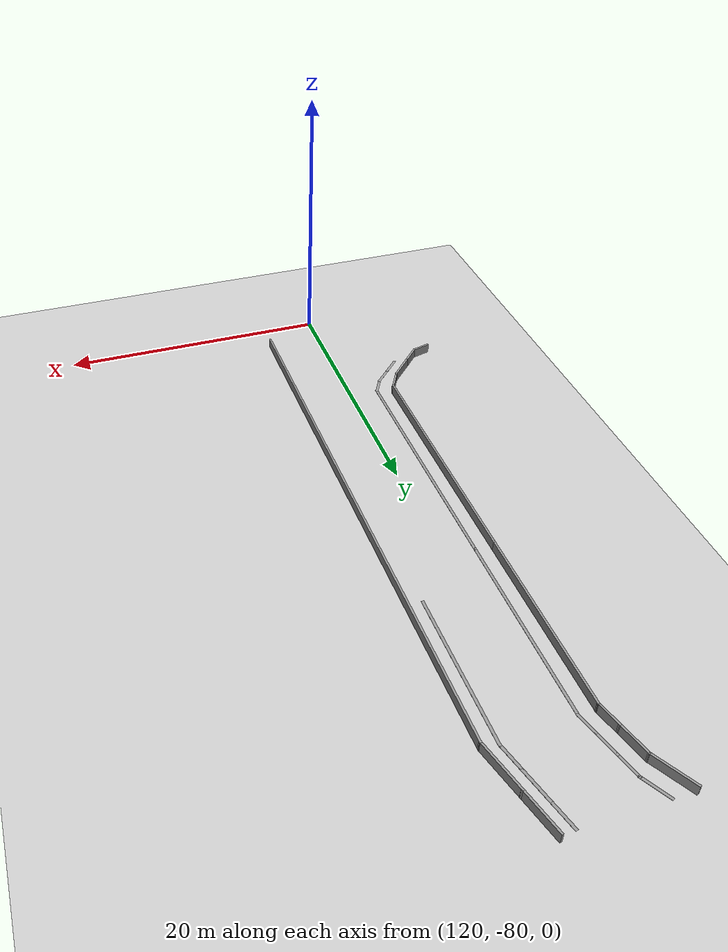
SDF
<sdf version="1.6">
 <world name="default">
  <model name="ground_plane">
   <static>1</static>
   <link name="link">
    <collision name="collision">
     <geometry><plane><normal>0 0 1</normal><size>100 100</size></plane></geometry>
     <surface>
      <contact><collide_bitmask>65535</collide_bitmask></contact>
      <friction><ode><mu>100</mu><mu2>50</mu2></ode></friction>
     </surface>
    </collision>
    <visual name="visual">
     <cast_shadows>0</cast_shadows>
     <geometry><plane><normal>0 0 1</normal><size>100 100</size></plane></geometry>
     <material>
      <script><uri>file://media/materials/scripts/gazebo.material</uri><name>Gazebo/Grey</name></script>
     </material>
    </visual>
   </link>
  </model>
  <model name="GercekDuvarSeritKoyu1">
   <link name="Wall_209">
    <pose>18.5351 52.7204 0 0 -0 1.83302</pose>
    <inertial>
     <mass>1</mass>
     <inertia><ixx>1</ixx><ixy>0</ixy><ixz>0</ixz><iyy>1</iyy><iyz>0</iyz><izz>1</izz></inertia>
    </inertial>
    <visual name="Wall_209_Visual">
     <pose>0 0 0.375 0 -0 0</pose>
     <geometry><box><size>1.5 0.15 0.75</size></box></geometry>
     <material>
      <script><uri>file://media/materials/scripts/gazebo.material</uri><name>Gazebo/Grey</name></script>
      <ambient>0.5 0.5 0.5 1</ambient>
      <shader type="pixel"><normal_map>__default__</normal_map></shader>
      <diffuse>0.7 0.7 0.7 1</diffuse>
      <specular>0.01 0.01 0.01 1</specular>
      <emissive>0 0 0 1</emissive>
     </material>
     <meta><layer>0</layer></meta>
    </visual>
    <collision name="Wall_209_Collision">
     <pose>0 0 0.375 0 -0 0</pose>
     <geometry><box><size>1.5 0.15 0.75</size></box></geometry>
     <surface>
      <friction>
       <ode><mu>1</mu><mu2>1</mu2><fdir1>0 0 0</fdir1><slip1>0</slip1><slip2>0</slip2></ode>
       <torsional>
        <coefficient>1</coefficient>
        <patch_radius>0</patch_radius>
        <surface_radius>0</surface_radius>
        <use_patch_radius>1</use_patch_radius>
        <ode><slip>0</slip></ode>
       </torsional>
      </friction>
      <bounce><restitution_coefficient>0</restitution_coefficient><threshold>1e+06</threshold></bounce>
      <contact>
       <collide_without_contact>0</collide_without_contact>
       <collide_without_contact_bitmask>1</collide_without_contact_bitmask>
       <collide_bitmask>1</collide_bitmask>
       <ode>
        <soft_cfm>0</soft_cfm>
        <soft_erp>0.2</soft_erp>
        <kp>1e+13</kp>
        <kd>1</kd>
        <max_vel>0.01</max_vel>
        <min_depth>0</min_depth>
       </ode>
       <bullet>
        <split_impulse>1</split_impulse>
        <split_impulse_penetration_threshold>-0.01</split_impulse_penetration_threshold>
        <soft_cfm>0</soft_cfm>
        <soft_erp>0.2</soft_erp>
        <kp>1e+13</kp>
        <kd>1</kd>
       </bullet>
      </contact>
     </surface>
    </collision>
   </link>
   <link name="Wall_210">
    <pose>17.7946 53.9379 0 0 -0 2.35619</pose>
    <inertial>
     <mass>1</mass>
     <inertia><ixx>1</ixx><ixy>0</ixy><ixz>0</ixz><iyy>1</iyy><iyz>0</iyz><izz>1</izz></inertia>
    </inertial>
    <visual name="Wall_210_Visual">
     <pose>0 0 0.375 0 -0 0</pose>
     <geometry><box><size>1.75 0.15 0.75</size></box></geometry>
     <material>
      <script><uri>file://media/materials/scripts/gazebo.material</uri><name>Gazebo/Grey</name></script>
      <ambient>0.5 0.5 0.5 1</ambient>
      <shader type="pixel"><normal_map>__default__</normal_map></shader>
      <diffuse>0.7 0.7 0.7 1</diffuse>
      <specular>0.01 0.01 0.01 1</specular>
      <emissive>0 0 0 1</emissive>
     </material>
     <meta><layer>0</layer></meta>
    </visual>
    <collision name="Wall_210_Collision">
     <pose>0 0 0.375 0 -0 0</pose>
     <geometry><box><size>1.75 0.15 0.75</size></box></geometry>
     <surface>
      <friction>
       <ode><mu>1</mu><mu2>1</mu2><fdir1>0 0 0</fdir1><slip1>0</slip1><slip2>0</slip2></ode>
       <torsional>
        <coefficient>1</coefficient>
        <patch_radius>0</patch_radius>
        <surface_radius>0</surface_radius>
        <use_patch_radius>1</use_patch_radius>
        <ode><slip>0</slip></ode>
       </torsional>
      </friction>
      <bounce><restitution_coefficient>0</restitution_coefficient><threshold>1e+06</threshold></bounce>
      <contact>
       <collide_without_contact>0</collide_without_contact>
       <collide_without_contact_bitmask>1</collide_without_contact_bitmask>
       <collide_bitmask>1</collide_bitmask>
       <ode>
        <soft_cfm>0</soft_cfm>
        <soft_erp>0.2</soft_erp>
        <kp>1e+13</kp>
        <kd>1</kd>
        <max_vel>0.01</max_vel>
        <min_depth>0</min_depth>
       </ode>
       <bullet>
        <split_impulse>1</split_impulse>
        <split_impulse_penetration_threshold>-0.01</split_impulse_penetration_threshold>
        <soft_cfm>0</soft_cfm>
        <soft_erp>0.2</soft_erp>
        <kp>1e+13</kp>
        <kd>1</kd>
       </bullet>
      </contact>
     </surface>
    </collision>
   </link>
   <link name="Wall_211">
    <pose>16.4866 55.2459 0 0 -0 2.35619</pose>
    <inertial>
     <mass>1</mass>
     <inertia><ixx>1</ixx><ixy>0</ixy><ixz>0</ixz><iyy>1</iyy><iyz>0</iyz><izz>1</izz></inertia>
    </inertial>
    <visual name="Wall_211_Visual">
     <pose>0 0 0.375 0 -0 0</pose>
     <geometry><box><size>2.25 0.15 0.75</size></box></geometry>
     <material>
      <script><uri>file://media/materials/scripts/gazebo.material</uri><name>Gazebo/Grey</name></script>
      <ambient>0.5 0.5 0.5 1</ambient>
      <shader type="pixel"><normal_map>__default__</normal_map></shader>
      <diffuse>0.7 0.7 0.7 1</diffuse>
      <specular>0.01 0.01 0.01 1</specular>
      <emissive>0 0 0 1</emissive>
     </material>
     <meta><layer>0</layer></meta>
    </visual>
    <collision name="Wall_211_Collision">
     <pose>0 0 0.375 0 -0 0</pose>
     <geometry><box><size>2.25 0.15 0.75</size></box></geometry>
     <surface>
      <friction>
       <ode><mu>1</mu><mu2>1</mu2><fdir1>0 0 0</fdir1><slip1>0</slip1><slip2>0</slip2></ode>
       <torsional>
        <coefficient>1</coefficient>
        <patch_radius>0</patch_radius>
        <surface_radius>0</surface_radius>
        <use_patch_radius>1</use_patch_radius>
        <ode><slip>0</slip></ode>
       </torsional>
      </friction>
      <bounce><restitution_coefficient>0</restitution_coefficient><threshold>1e+06</threshold></bounce>
      <contact>
       <collide_without_contact>0</collide_without_contact>
       <collide_without_contact_bitmask>1</collide_without_contact_bitmask>
       <collide_bitmask>1</collide_bitmask>
       <ode>
        <soft_cfm>0</soft_cfm>
        <soft_erp>0.2</soft_erp>
        <kp>1e+13</kp>
        <kd>1</kd>
        <max_vel>0.01</max_vel>
        <min_depth>0</min_depth>
       </ode>
       <bullet>
        <split_impulse>1</split_impulse>
        <split_impulse_penetration_threshold>-0.01</split_impulse_penetration_threshold>
        <soft_cfm>0</soft_cfm>
        <soft_erp>0.2</soft_erp>
        <kp>1e+13</kp>
        <kd>1</kd>
       </bullet>
      </contact>
     </surface>
    </collision>
   </link>
   <link name="Wall_212">
    <pose>15.0516 56.3884 0 0 -0 2.61779</pose>
    <inertial>
     <mass>1</mass>
     <inertia><ixx>1</ixx><ixy>0</ixy><ixz>0</ixz><iyy>1</iyy><iyz>0</iyz><izz>1</izz></inertia>
    </inertial>
    <visual name="Wall_212_Visual">
     <pose>0 0 0.375 0 -0 0</pose>
     <geometry><box><size>1.75 0.15 0.75</size></box></geometry>
     <material>
      <script><uri>file://media/materials/scripts/gazebo.material</uri><name>Gazebo/Grey</name></script>
      <ambient>0.5 0.5 0.5 1</ambient>
      <shader type="pixel"><normal_map>__default__</normal_map></shader>
      <diffuse>0.7 0.7 0.7 1</diffuse>
      <specular>0.01 0.01 0.01 1</specular>
      <emissive>0 0 0 1</emissive>
     </material>
     <meta><layer>0</layer></meta>
    </visual>
    <collision name="Wall_212_Collision">
     <pose>0 0 0.375 0 -0 0</pose>
     <geometry><box><size>1.75 0.15 0.75</size></box></geometry>
     <surface>
      <friction>
       <ode><mu>1</mu><mu2>1</mu2><fdir1>0 0 0</fdir1><slip1>0</slip1><slip2>0</slip2></ode>
       <torsional>
        <coefficient>1</coefficient>
        <patch_radius>0</patch_radius>
        <surface_radius>0</surface_radius>
        <use_patch_radius>1</use_patch_radius>
        <ode><slip>0</slip></ode>
       </torsional>
      </friction>
      <bounce><restitution_coefficient>0</restitution_coefficient><threshold>1e+06</threshold></bounce>
      <contact>
       <collide_without_contact>0</collide_without_contact>
       <collide_without_contact_bitmask>1</collide_without_contact_bitmask>
       <collide_bitmask>1</collide_bitmask>
       <ode>
        <soft_cfm>0</soft_cfm>
        <soft_erp>0.2</soft_erp>
        <kp>1e+13</kp>
        <kd>1</kd>
        <max_vel>0.01</max_vel>
        <min_depth>0</min_depth>
       </ode>
       <bullet>
        <split_impulse>1</split_impulse>
        <split_impulse_penetration_threshold>-0.01</split_impulse_penetration_threshold>
        <soft_cfm>0</soft_cfm>
        <soft_erp>0.2</soft_erp>
        <kp>1e+13</kp>
        <kd>1</kd>
       </bullet>
      </contact>
     </surface>
    </collision>
   </link>
   <link name="Wall_213">
    <pose>5.55905 56.7884 0 0 -0 3.14159</pose>
    <inertial>
     <mass>1</mass>
     <inertia><ixx>1</ixx><ixy>0</ixy><ixz>0</ixz><iyy>1</iyy><iyz>0</iyz><izz>1</izz></inertia>
    </inertial>
    <visual name="Wall_213_Visual">
     <pose>0 0 0.375 0 -0 0</pose>
     <geometry><box><size>17.75 0.15 0.75</size></box></geometry>
     <material>
      <script><uri>file://media/materials/scripts/gazebo.material</uri><name>Gazebo/Grey</name></script>
      <ambient>0.5 0.5 0.5 1</ambient>
      <shader type="pixel"><normal_map>__default__</normal_map></shader>
      <diffuse>0.7 0.7 0.7 1</diffuse>
      <specular>0.01 0.01 0.01 1</specular>
      <emissive>0 0 0 1</emissive>
     </material>
     <meta><layer>0</layer></meta>
    </visual>
    <collision name="Wall_213_Collision">
     <pose>0 0 0.375 0 -0 0</pose>
     <geometry><box><size>17.75 0.15 0.75</size></box></geometry>
     <surface>
      <friction>
       <ode><mu>1</mu><mu2>1</mu2><fdir1>0 0 0</fdir1><slip1>0</slip1><slip2>0</slip2></ode>
       <torsional>
        <coefficient>1</coefficient>
        <patch_radius>0</patch_radius>
        <surface_radius>0</surface_radius>
        <use_patch_radius>1</use_patch_radius>
        <ode><slip>0</slip></ode>
       </torsional>
      </friction>
      <bounce><restitution_coefficient>0</restitution_coefficient><threshold>1e+06</threshold></bounce>
      <contact>
       <collide_without_contact>0</collide_without_contact>
       <collide_without_contact_bitmask>1</collide_without_contact_bitmask>
       <collide_bitmask>1</collide_bitmask>
       <ode>
        <soft_cfm>0</soft_cfm>
        <soft_erp>0.2</soft_erp>
        <kp>1e+13</kp>
        <kd>1</kd>
        <max_vel>0.01</max_vel>
        <min_depth>0</min_depth>
       </ode>
       <bullet>
        <split_impulse>1</split_impulse>
        <split_impulse_penetration_threshold>-0.01</split_impulse_penetration_threshold>
        <soft_cfm>0</soft_cfm>
        <soft_erp>0.2</soft_erp>
        <kp>1e+13</kp>
        <kd>1</kd>
       </bullet>
      </contact>
     </surface>
    </collision>
   </link>
   <link name="Wall_215">
    <pose>-9.79095 56.7884 0 0 -0 3.14159</pose>
    <inertial>
     <mass>1</mass>
     <inertia><ixx>1</ixx><ixy>0</ixy><ixz>0</ixz><iyy>1</iyy><iyz>0</iyz><izz>1</izz></inertia>
    </inertial>
    <visual name="Wall_215_Visual">
     <pose>0 0 0.375 0 -0 0</pose>
     <geometry><box><size>13.25 0.15 0.75</size></box></geometry>
     <material>
      <script><uri>file://media/materials/scripts/gazebo.material</uri><name>Gazebo/Grey</name></script>
      <ambient>0.5 0.5 0.5 1</ambient>
      <shader type="pixel"><normal_map>__default__</normal_map></shader>
      <diffuse>0.7 0.7 0.7 1</diffuse>
      <specular>0.01 0.01 0.01 1</specular>
      <emissive>0 0 0 1</emissive>
     </material>
     <meta><layer>0</layer></meta>
    </visual>
    <collision name="Wall_215_Collision">
     <pose>0 0 0.375 0 -0 0</pose>
     <geometry><box><size>13.25 0.15 0.75</size></box></geometry>
     <surface>
      <friction>
       <ode><mu>1</mu><mu2>1</mu2><fdir1>0 0 0</fdir1><slip1>0</slip1><slip2>0</slip2></ode>
       <torsional>
        <coefficient>1</coefficient>
        <patch_radius>0</patch_radius>
        <surface_radius>0</surface_radius>
        <use_patch_radius>1</use_patch_radius>
        <ode><slip>0</slip></ode>
       </torsional>
      </friction>
      <bounce><restitution_coefficient>0</restitution_coefficient><threshold>1e+06</threshold></bounce>
      <contact>
       <collide_without_contact>0</collide_without_contact>
       <collide_without_contact_bitmask>1</collide_without_contact_bitmask>
       <collide_bitmask>1</collide_bitmask>
       <ode>
        <soft_cfm>0</soft_cfm>
        <soft_erp>0.2</soft_erp>
        <kp>1e+13</kp>
        <kd>1</kd>
        <max_vel>0.01</max_vel>
        <min_depth>0</min_depth>
       </ode>
       <bullet>
        <split_impulse>1</split_impulse>
        <split_impulse_penetration_threshold>-0.01</split_impulse_penetration_threshold>
        <soft_cfm>0</soft_cfm>
        <soft_erp>0.2</soft_erp>
        <kp>1e+13</kp>
        <kd>1</kd>
       </bullet>
      </contact>
     </surface>
    </collision>
   </link>
   <link name="Wall_216">
    <pose>-17.1139 56.5814 0 0 0 -2.87994</pose>
    <inertial>
     <mass>1</mass>
     <inertia><ixx>1</ixx><ixy>0</ixy><ixz>0</ixz><iyy>1</iyy><iyz>0</iyz><izz>1</izz></inertia>
    </inertial>
    <visual name="Wall_216_Visual">
     <pose>0 0 0.375 0 -0 0</pose>
     <geometry><box><size>1.75 0.15 0.75</size></box></geometry>
     <material>
      <script><uri>file://media/materials/scripts/gazebo.material</uri><name>Gazebo/Grey</name></script>
      <ambient>0.5 0.5 0.5 1</ambient>
      <shader type="pixel"><normal_map>__default__</normal_map></shader>
      <diffuse>0.7 0.7 0.7 1</diffuse>
      <specular>0.01 0.01 0.01 1</specular>
      <emissive>0 0 0 1</emissive>
     </material>
     <meta><layer>0</layer></meta>
    </visual>
    <collision name="Wall_216_Collision">
     <pose>0 0 0.375 0 -0 0</pose>
     <geometry><box><size>1.75 0.15 0.75</size></box></geometry>
     <surface>
      <friction>
       <ode><mu>1</mu><mu2>1</mu2><fdir1>0 0 0</fdir1><slip1>0</slip1><slip2>0</slip2></ode>
       <torsional>
        <coefficient>1</coefficient>
        <patch_radius>0</patch_radius>
        <surface_radius>0</surface_radius>
        <use_patch_radius>1</use_patch_radius>
        <ode><slip>0</slip></ode>
       </torsional>
      </friction>
      <bounce><restitution_coefficient>0</restitution_coefficient><threshold>1e+06</threshold></bounce>
      <contact>
       <collide_without_contact>0</collide_without_contact>
       <collide_without_contact_bitmask>1</collide_without_contact_bitmask>
       <collide_bitmask>1</collide_bitmask>
       <ode>
        <soft_cfm>0</soft_cfm>
        <soft_erp>0.2</soft_erp>
        <kp>1e+13</kp>
        <kd>1</kd>
        <max_vel>0.01</max_vel>
        <min_depth>0</min_depth>
       </ode>
       <bullet>
        <split_impulse>1</split_impulse>
        <split_impulse_penetration_threshold>-0.01</split_impulse_penetration_threshold>
        <soft_cfm>0</soft_cfm>
        <soft_erp>0.2</soft_erp>
        <kp>1e+13</kp>
        <kd>1</kd>
       </bullet>
      </contact>
     </surface>
    </collision>
   </link>
   <link name="Wall_217">
    <pose>-18.9009 56.1024 0 0 0 -2.87952</pose>
    <inertial>
     <mass>1</mass>
     <inertia><ixx>1</ixx><ixy>0</ixy><ixz>0</ixz><iyy>1</iyy><iyz>0</iyz><izz>1</izz></inertia>
    </inertial>
    <visual name="Wall_217_Visual">
     <pose>0 0 0.375 0 -0 0</pose>
     <geometry><box><size>2.25 0.15 0.75</size></box></geometry>
     <material>
      <script><uri>file://media/materials/scripts/gazebo.material</uri><name>Gazebo/Grey</name></script>
      <ambient>0.5 0.5 0.5 1</ambient>
      <shader type="pixel"><normal_map>__default__</normal_map></shader>
      <diffuse>0.7 0.7 0.7 1</diffuse>
      <specular>0.01 0.01 0.01 1</specular>
      <emissive>0 0 0 1</emissive>
     </material>
     <meta><layer>0</layer></meta>
    </visual>
    <collision name="Wall_217_Collision">
     <pose>0 0 0.375 0 -0 0</pose>
     <geometry><box><size>2.25 0.15 0.75</size></box></geometry>
     <surface>
      <friction>
       <ode><mu>1</mu><mu2>1</mu2><fdir1>0 0 0</fdir1><slip1>0</slip1><slip2>0</slip2></ode>
       <torsional>
        <coefficient>1</coefficient>
        <patch_radius>0</patch_radius>
        <surface_radius>0</surface_radius>
        <use_patch_radius>1</use_patch_radius>
        <ode><slip>0</slip></ode>
       </torsional>
      </friction>
      <bounce><restitution_coefficient>0</restitution_coefficient><threshold>1e+06</threshold></bounce>
      <contact>
       <collide_without_contact>0</collide_without_contact>
       <collide_without_contact_bitmask>1</collide_without_contact_bitmask>
       <collide_bitmask>1</collide_bitmask>
       <ode>
        <soft_cfm>0</soft_cfm>
        <soft_erp>0.2</soft_erp>
        <kp>1e+13</kp>
        <kd>1</kd>
        <max_vel>0.01</max_vel>
        <min_depth>0</min_depth>
       </ode>
       <bullet>
        <split_impulse>1</split_impulse>
        <split_impulse_penetration_threshold>-0.01</split_impulse_penetration_threshold>
        <soft_cfm>0</soft_cfm>
        <soft_erp>0.2</soft_erp>
        <kp>1e+13</kp>
        <kd>1</kd>
       </bullet>
      </contact>
     </surface>
    </collision>
   </link>
   <link name="Wall_218">
    <pose>-21.1494 55.1179 0 0 0 -2.61814</pose>
    <inertial>
     <mass>1</mass>
     <inertia><ixx>1</ixx><ixy>0</ixy><ixz>0</ixz><iyy>1</iyy><iyz>0</iyz><izz>1</izz></inertia>
    </inertial>
    <visual name="Wall_218_Visual">
     <pose>0 0 0.375 0 -0 0</pose>
     <geometry><box><size>3 0.15 0.75</size></box></geometry>
     <material>
      <script><uri>file://media/materials/scripts/gazebo.material</uri><name>Gazebo/Grey</name></script>
      <ambient>0.5 0.5 0.5 1</ambient>
      <shader type="pixel"><normal_map>__default__</normal_map></shader>
      <diffuse>0.7 0.7 0.7 1</diffuse>
      <specular>0.01 0.01 0.01 1</specular>
      <emissive>0 0 0 1</emissive>
     </material>
     <meta><layer>0</layer></meta>
    </visual>
    <collision name="Wall_218_Collision">
     <pose>0 0 0.375 0 -0 0</pose>
     <geometry><box><size>3 0.15 0.75</size></box></geometry>
     <surface>
      <friction>
       <ode><mu>1</mu><mu2>1</mu2><fdir1>0 0 0</fdir1><slip1>0</slip1><slip2>0</slip2></ode>
       <torsional>
        <coefficient>1</coefficient>
        <patch_radius>0</patch_radius>
        <surface_radius>0</surface_radius>
        <use_patch_radius>1</use_patch_radius>
        <ode><slip>0</slip></ode>
       </torsional>
      </friction>
      <bounce><restitution_coefficient>0</restitution_coefficient><threshold>1e+06</threshold></bounce>
      <contact>
       <collide_without_contact>0</collide_without_contact>
       <collide_without_contact_bitmask>1</collide_without_contact_bitmask>
       <collide_bitmask>1</collide_bitmask>
       <ode>
        <soft_cfm>0</soft_cfm>
        <soft_erp>0.2</soft_erp>
        <kp>1e+13</kp>
        <kd>1</kd>
        <max_vel>0.01</max_vel>
        <min_depth>0</min_depth>
       </ode>
       <bullet>
        <split_impulse>1</split_impulse>
        <split_impulse_penetration_threshold>-0.01</split_impulse_penetration_threshold>
        <soft_cfm>0</soft_cfm>
        <soft_erp>0.2</soft_erp>
        <kp>1e+13</kp>
        <kd>1</kd>
       </bullet>
      </contact>
     </surface>
    </collision>
   </link>
   <link name="Wall_293">
    <pose>-11.3499 62.9264 0 0 -0 3.14159</pose>
    <visual name="Wall_293_Visual">
     <pose>0 0 0.005 0 -0 0</pose>
     <geometry><box><size>10.7998 0.2 0.01</size></box></geometry>
     <material>
      <script><uri>file://media/materials/scripts/gazebo.material</uri><name>Gazebo/Grey</name></script>
      <ambient>1 1 1 1</ambient>
      <shader type="pixel"/>
     </material>
     <meta><layer>0</layer></meta>
    </visual>
    <collision name="Wall_293_Collision">
     <pose>0 0 0.005 0 -0 0</pose>
     <geometry><box><size>10.7998 0.2 0.01</size></box></geometry>
     <surface>
      <friction>
       <ode><mu>1</mu><mu2>1</mu2><fdir1>0 0 0</fdir1><slip1>0</slip1><slip2>0</slip2></ode>
       <torsional>
        <coefficient>1</coefficient>
        <patch_radius>0</patch_radius>
        <surface_radius>0</surface_radius>
        <use_patch_radius>1</use_patch_radius>
        <ode><slip>0</slip></ode>
       </torsional>
      </friction>
      <bounce><restitution_coefficient>0</restitution_coefficient><threshold>1e+06</threshold></bounce>
      <contact>
       <collide_without_contact>0</collide_without_contact>
       <collide_without_contact_bitmask>1</collide_without_contact_bitmask>
       <collide_bitmask>1</collide_bitmask>
       <ode>
        <soft_cfm>0</soft_cfm>
        <soft_erp>0.2</soft_erp>
        <kp>1e+13</kp>
        <kd>1</kd>
        <max_vel>0.01</max_vel>
        <min_depth>0</min_depth>
       </ode>
       <bullet>
        <split_impulse>1</split_impulse>
        <split_impulse_penetration_threshold>-0.01</split_impulse_penetration_threshold>
        <soft_cfm>0</soft_cfm>
        <soft_erp>0.2</soft_erp>
        <kp>1e+13</kp>
        <kd>1</kd>
       </bullet>
      </contact>
     </surface>
    </collision>
   </link>
   <link name="Wall_295">
    <pose>-17.5434 62.6869 0 0 0 -2.8797</pose>
    <visual name="Wall_295_Visual">
     <pose>0 0 0.005 0 -0 0</pose>
     <geometry><box><size>2.04979 0.2 0.01</size></box></geometry>
     <material>
      <script><uri>file://media/materials/scripts/gazebo.material</uri><name>Gazebo/Grey</name></script>
      <ambient>1 1 1 1</ambient>
      <shader type="pixel"/>
     </material>
     <meta><layer>0</layer></meta>
    </visual>
    <collision name="Wall_295_Collision">
     <pose>0 0 0.005 0 -0 0</pose>
     <geometry><box><size>2.04979 0.2 0.01</size></box></geometry>
     <surface>
      <friction>
       <ode><mu>1</mu><mu2>1</mu2><fdir1>0 0 0</fdir1><slip1>0</slip1><slip2>0</slip2></ode>
       <torsional>
        <coefficient>1</coefficient>
        <patch_radius>0</patch_radius>
        <surface_radius>0</surface_radius>
        <use_patch_radius>1</use_patch_radius>
        <ode><slip>0</slip></ode>
       </torsional>
      </friction>
      <bounce><restitution_coefficient>0</restitution_coefficient><threshold>1e+06</threshold></bounce>
      <contact>
       <collide_without_contact>0</collide_without_contact>
       <collide_without_contact_bitmask>1</collide_without_contact_bitmask>
       <collide_bitmask>1</collide_bitmask>
       <ode>
        <soft_cfm>0</soft_cfm>
        <soft_erp>0.2</soft_erp>
        <kp>1e+13</kp>
        <kd>1</kd>
        <max_vel>0.01</max_vel>
        <min_depth>0</min_depth>
       </ode>
       <bullet>
        <split_impulse>1</split_impulse>
        <split_impulse_penetration_threshold>-0.01</split_impulse_penetration_threshold>
        <soft_cfm>0</soft_cfm>
        <soft_erp>0.2</soft_erp>
        <kp>1e+13</kp>
        <kd>1</kd>
       </bullet>
      </contact>
     </surface>
    </collision>
   </link>
   <link name="Wall_296">
    <pose>-19.4509 62.1759 0 0 0 -2.87998</pose>
    <visual name="Wall_296_Visual">
     <pose>0 0 0.005 0 -0 0</pose>
     <geometry><box><size>2.2997 0.2 0.01</size></box></geometry>
     <material>
      <script><uri>file://media/materials/scripts/gazebo.material</uri><name>Gazebo/Grey</name></script>
      <ambient>1 1 1 1</ambient>
      <shader type="pixel"/>
     </material>
     <meta><layer>0</layer></meta>
    </visual>
    <collision name="Wall_296_Collision">
     <pose>0 0 0.005 0 -0 0</pose>
     <geometry><box><size>2.2997 0.2 0.01</size></box></geometry>
     <surface>
      <friction>
       <ode><mu>1</mu><mu2>1</mu2><fdir1>0 0 0</fdir1><slip1>0</slip1><slip2>0</slip2></ode>
       <torsional>
        <coefficient>1</coefficient>
        <patch_radius>0</patch_radius>
        <surface_radius>0</surface_radius>
        <use_patch_radius>1</use_patch_radius>
        <ode><slip>0</slip></ode>
       </torsional>
      </friction>
      <bounce><restitution_coefficient>0</restitution_coefficient><threshold>1e+06</threshold></bounce>
      <contact>
       <collide_without_contact>0</collide_without_contact>
       <collide_without_contact_bitmask>1</collide_without_contact_bitmask>
       <collide_bitmask>1</collide_bitmask>
       <ode>
        <soft_cfm>0</soft_cfm>
        <soft_erp>0.2</soft_erp>
        <kp>1e+13</kp>
        <kd>1</kd>
        <max_vel>0.01</max_vel>
        <min_depth>0</min_depth>
       </ode>
       <bullet>
        <split_impulse>1</split_impulse>
        <split_impulse_penetration_threshold>-0.01</split_impulse_penetration_threshold>
        <soft_cfm>0</soft_cfm>
        <soft_erp>0.2</soft_erp>
        <kp>1e+13</kp>
        <kd>1</kd>
       </bullet>
      </contact>
     </surface>
    </collision>
   </link>
   <link name="Wall_297">
    <pose>-21.3584 61.6649 0 0 0 -2.8797</pose>
    <visual name="Wall_297_Visual">
     <pose>0 0 0.005 0 -0 0</pose>
     <geometry><box><size>2.05027 0.2 0.01</size></box></geometry>
     <material>
      <script><uri>file://media/materials/scripts/gazebo.material</uri><name>Gazebo/Grey</name></script>
      <ambient>1 1 1 1</ambient>
      <shader type="pixel"/>
     </material>
     <meta><layer>0</layer></meta>
    </visual>
    <collision name="Wall_297_Collision">
     <pose>0 0 0.005 0 -0 0</pose>
     <geometry><box><size>2.05027 0.2 0.01</size></box></geometry>
     <surface>
      <friction>
       <ode><mu>1</mu><mu2>1</mu2><fdir1>0 0 0</fdir1><slip1>0</slip1><slip2>0</slip2></ode>
       <torsional>
        <coefficient>1</coefficient>
        <patch_radius>0</patch_radius>
        <surface_radius>0</surface_radius>
        <use_patch_radius>1</use_patch_radius>
        <ode><slip>0</slip></ode>
       </torsional>
      </friction>
      <bounce><restitution_coefficient>0</restitution_coefficient><threshold>1e+06</threshold></bounce>
      <contact>
       <collide_without_contact>0</collide_without_contact>
       <collide_without_contact_bitmask>1</collide_without_contact_bitmask>
       <collide_bitmask>1</collide_bitmask>
       <ode>
        <soft_cfm>0</soft_cfm>
        <soft_erp>0.2</soft_erp>
        <kp>1e+13</kp>
        <kd>1</kd>
        <max_vel>0.01</max_vel>
        <min_depth>0</min_depth>
       </ode>
       <bullet>
        <split_impulse>1</split_impulse>
        <split_impulse_penetration_threshold>-0.01</split_impulse_penetration_threshold>
        <soft_cfm>0</soft_cfm>
        <soft_erp>0.2</soft_erp>
        <kp>1e+13</kp>
        <kd>1</kd>
       </bullet>
      </contact>
     </surface>
    </collision>
   </link>
   <link name="Wall_36">
    <pose>3.31406 64.1334 0 0 -0 3.14159</pose>
    <inertial>
     <mass>1</mass>
     <inertia><ixx>1</ixx><ixy>0</ixy><ixz>0</ixz><iyy>1</iyy><iyz>0</iyz><izz>1</izz></inertia>
    </inertial>
    <visual name="Wall_36_Visual">
     <pose>0 0 0.375 0 -0 0</pose>
     <geometry><box><size>40 0.15 0.75</size></box></geometry>
     <material>
      <script><uri>file://media/materials/scripts/gazebo.material</uri><name>Gazebo/Grey</name></script>
      <ambient>0.5 0.5 0.5 1</ambient>
      <shader type="pixel"><normal_map>__default__</normal_map></shader>
      <diffuse>0.7 0.7 0.7 1</diffuse>
      <specular>0.01 0.01 0.01 1</specular>
      <emissive>0 0 0 1</emissive>
     </material>
     <meta><layer>0</layer></meta>
    </visual>
    <collision name="Wall_36_Collision">
     <pose>0 0 0.375 0 -0 0</pose>
     <geometry><box><size>40 0.15 0.75</size></box></geometry>
     <surface>
      <friction>
       <ode><mu>1</mu><mu2>1</mu2><fdir1>0 0 0</fdir1><slip1>0</slip1><slip2>0</slip2></ode>
       <torsional>
        <coefficient>1</coefficient>
        <patch_radius>0</patch_radius>
        <surface_radius>0</surface_radius>
        <use_patch_radius>1</use_patch_radius>
        <ode><slip>0</slip></ode>
       </torsional>
      </friction>
      <bounce><restitution_coefficient>0</restitution_coefficient><threshold>1e+06</threshold></bounce>
      <contact>
       <collide_without_contact>0</collide_without_contact>
       <collide_without_contact_bitmask>1</collide_without_contact_bitmask>
       <collide_bitmask>1</collide_bitmask>
       <ode>
        <soft_cfm>0</soft_cfm>
        <soft_erp>0.2</soft_erp>
        <kp>1e+13</kp>
        <kd>1</kd>
        <max_vel>0.01</max_vel>
        <min_depth>0</min_depth>
       </ode>
       <bullet>
        <split_impulse>1</split_impulse>
        <split_impulse_penetration_threshold>-0.01</split_impulse_penetration_threshold>
        <soft_cfm>0</soft_cfm>
        <soft_erp>0.2</soft_erp>
        <kp>1e+13</kp>
        <kd>1</kd>
       </bullet>
      </contact>
     </surface>
    </collision>
   </link>
   <link name="Wall_38">
    <pose>-18.2284 63.6999 0 0 0 -2.87974</pose>
    <inertial>
     <mass>1</mass>
     <inertia><ixx>1</ixx><ixy>0</ixy><ixz>0</ixz><iyy>1</iyy><iyz>0</iyz><izz>1</izz></inertia>
    </inertial>
    <visual name="Wall_38_Visual">
     <pose>0 0 0.375 0 -0 0</pose>
     <geometry><box><size>3.5 0.15 0.75</size></box></geometry>
     <material>
      <script><uri>file://media/materials/scripts/gazebo.material</uri><name>Gazebo/Grey</name></script>
      <ambient>0.5 0.5 0.5 1</ambient>
      <shader type="pixel"><normal_map>__default__</normal_map></shader>
      <diffuse>0.7 0.7 0.7 1</diffuse>
      <specular>0.01 0.01 0.01 1</specular>
      <emissive>0 0 0 1</emissive>
     </material>
     <meta><layer>0</layer></meta>
    </visual>
    <collision name="Wall_38_Collision">
     <pose>0 0 0.375 0 -0 0</pose>
     <geometry><box><size>3.5 0.15 0.75</size></box></geometry>
     <surface>
      <friction>
       <ode><mu>1</mu><mu2>1</mu2><fdir1>0 0 0</fdir1><slip1>0</slip1><slip2>0</slip2></ode>
       <torsional>
        <coefficient>1</coefficient>
        <patch_radius>0</patch_radius>
        <surface_radius>0</surface_radius>
        <use_patch_radius>1</use_patch_radius>
        <ode><slip>0</slip></ode>
       </torsional>
      </friction>
      <bounce><restitution_coefficient>0</restitution_coefficient><threshold>1e+06</threshold></bounce>
      <contact>
       <collide_without_contact>0</collide_without_contact>
       <collide_without_contact_bitmask>1</collide_without_contact_bitmask>
       <collide_bitmask>1</collide_bitmask>
       <ode>
        <soft_cfm>0</soft_cfm>
        <soft_erp>0.2</soft_erp>
        <kp>1e+13</kp>
        <kd>1</kd>
        <max_vel>0.01</max_vel>
        <min_depth>0</min_depth>
       </ode>
       <bullet>
        <split_impulse>1</split_impulse>
        <split_impulse_penetration_threshold>-0.01</split_impulse_penetration_threshold>
        <soft_cfm>0</soft_cfm>
        <soft_erp>0.2</soft_erp>
        <kp>1e+13</kp>
        <kd>1</kd>
       </bullet>
      </contact>
     </surface>
    </collision>
   </link>
   <link name="Wall_39">
    <pose>-21.2224 62.8974 0 0 0 -2.87968</pose>
    <inertial>
     <mass>1</mass>
     <inertia><ixx>1</ixx><ixy>0</ixy><ixz>0</ixz><iyy>1</iyy><iyz>0</iyz><izz>1</izz></inertia>
    </inertial>
    <visual name="Wall_39_Visual">
     <pose>0 0 0.375 0 -0 0</pose>
     <geometry><box><size>3 0.15 0.75</size></box></geometry>
     <material>
      <script><uri>file://media/materials/scripts/gazebo.material</uri><name>Gazebo/Grey</name></script>
      <ambient>0.5 0.5 0.5 1</ambient>
      <shader type="pixel"><normal_map>__default__</normal_map></shader>
      <diffuse>0.7 0.7 0.7 1</diffuse>
      <specular>0.01 0.01 0.01 1</specular>
      <emissive>0 0 0 1</emissive>
     </material>
     <meta><layer>0</layer></meta>
    </visual>
    <collision name="Wall_39_Collision">
     <pose>0 0 0.375 0 -0 0</pose>
     <geometry><box><size>3 0.15 0.75</size></box></geometry>
     <surface>
      <friction>
       <ode><mu>1</mu><mu2>1</mu2><fdir1>0 0 0</fdir1><slip1>0</slip1><slip2>0</slip2></ode>
       <torsional>
        <coefficient>1</coefficient>
        <patch_radius>0</patch_radius>
        <surface_radius>0</surface_radius>
        <use_patch_radius>1</use_patch_radius>
        <ode><slip>0</slip></ode>
       </torsional>
      </friction>
      <bounce><restitution_coefficient>0</restitution_coefficient><threshold>1e+06</threshold></bounce>
      <contact>
       <collide_without_contact>0</collide_without_contact>
       <collide_without_contact_bitmask>1</collide_without_contact_bitmask>
       <collide_bitmask>1</collide_bitmask>
       <ode>
        <soft_cfm>0</soft_cfm>
        <soft_erp>0.2</soft_erp>
        <kp>1e+13</kp>
        <kd>1</kd>
        <max_vel>0.01</max_vel>
        <min_depth>0</min_depth>
       </ode>
       <bullet>
        <split_impulse>1</split_impulse>
        <split_impulse_penetration_threshold>-0.01</split_impulse_penetration_threshold>
        <soft_cfm>0</soft_cfm>
        <soft_erp>0.2</soft_erp>
        <kp>1e+13</kp>
        <kd>1</kd>
       </bullet>
      </contact>
     </surface>
    </collision>
   </link>
   <link name="Wall_549">
    <pose>17.6336 55.6909 0 0 -0 2.35619</pose>
    <visual name="Wall_549_Visual">
     <pose>0 0 0.005 0 -0 0</pose>
     <geometry><box><size>1.79974 0.2 0.01</size></box></geometry>
     <material>
      <script><uri>file://media/materials/scripts/gazebo.material</uri><name>Gazebo/Grey</name></script>
      <ambient>1 1 1 1</ambient>
      <shader type="pixel"/>
     </material>
     <meta><layer>0</layer></meta>
    </visual>
    <collision name="Wall_549_Collision">
     <pose>0 0 0.005 0 -0 0</pose>
     <geometry><box><size>1.79974 0.2 0.01</size></box></geometry>
     <surface>
      <friction>
       <ode><mu>1</mu><mu2>1</mu2><fdir1>0 0 0</fdir1><slip1>0</slip1><slip2>0</slip2></ode>
       <torsional>
        <coefficient>1</coefficient>
        <patch_radius>0</patch_radius>
        <surface_radius>0</surface_radius>
        <use_patch_radius>1</use_patch_radius>
        <ode><slip>0</slip></ode>
       </torsional>
      </friction>
      <bounce><restitution_coefficient>0</restitution_coefficient><threshold>1e+06</threshold></bounce>
      <contact>
       <collide_without_contact>0</collide_without_contact>
       <collide_without_contact_bitmask>1</collide_without_contact_bitmask>
       <collide_bitmask>1</collide_bitmask>
       <ode>
        <soft_cfm>0</soft_cfm>
        <soft_erp>0.2</soft_erp>
        <kp>1e+13</kp>
        <kd>1</kd>
        <max_vel>0.01</max_vel>
        <min_depth>0</min_depth>
       </ode>
       <bullet>
        <split_impulse>1</split_impulse>
        <split_impulse_penetration_threshold>-0.01</split_impulse_penetration_threshold>
        <soft_cfm>0</soft_cfm>
        <soft_erp>0.2</soft_erp>
        <kp>1e+13</kp>
        <kd>1</kd>
       </bullet>
      </contact>
     </surface>
    </collision>
   </link>
   <link name="Wall_550">
    <pose>16.5996 56.7339 0 0 -0 2.34668</pose>
    <visual name="Wall_550_Visual">
     <pose>0 0 0.005 0 -0 0</pose>
     <geometry><box><size>1.53784 0.2 0.01</size></box></geometry>
     <material>
      <script><uri>file://media/materials/scripts/gazebo.material</uri><name>Gazebo/Grey</name></script>
      <ambient>1 1 1 1</ambient>
      <shader type="pixel"/>
     </material>
     <meta><layer>0</layer></meta>
    </visual>
    <collision name="Wall_550_Collision">
     <pose>0 0 0.005 0 -0 0</pose>
     <geometry><box><size>1.53784 0.2 0.01</size></box></geometry>
     <surface>
      <friction>
       <ode><mu>1</mu><mu2>1</mu2><fdir1>0 0 0</fdir1><slip1>0</slip1><slip2>0</slip2></ode>
       <torsional>
        <coefficient>1</coefficient>
        <patch_radius>0</patch_radius>
        <surface_radius>0</surface_radius>
        <use_patch_radius>1</use_patch_radius>
        <ode><slip>0</slip></ode>
       </torsional>
      </friction>
      <bounce><restitution_coefficient>0</restitution_coefficient><threshold>1e+06</threshold></bounce>
      <contact>
       <collide_without_contact>0</collide_without_contact>
       <collide_without_contact_bitmask>1</collide_without_contact_bitmask>
       <collide_bitmask>1</collide_bitmask>
       <ode>
        <soft_cfm>0</soft_cfm>
        <soft_erp>0.2</soft_erp>
        <kp>1e+13</kp>
        <kd>1</kd>
        <max_vel>0.01</max_vel>
        <min_depth>0</min_depth>
       </ode>
       <bullet>
        <split_impulse>1</split_impulse>
        <split_impulse_penetration_threshold>-0.01</split_impulse_penetration_threshold>
        <soft_cfm>0</soft_cfm>
        <soft_erp>0.2</soft_erp>
        <kp>1e+13</kp>
        <kd>1</kd>
       </bullet>
      </contact>
     </surface>
    </collision>
   </link>
   <link name="Wall_551">
    <pose>15.5466 57.5489 0 0 -0 2.61794</pose>
    <visual name="Wall_551_Visual">
     <pose>0 0 0.005 0 -0 0</pose>
     <geometry><box><size>1.55007 0.2 0.01</size></box></geometry>
     <material>
      <script><uri>file://media/materials/scripts/gazebo.material</uri><name>Gazebo/Grey</name></script>
      <ambient>1 1 1 1</ambient>
      <shader type="pixel"/>
     </material>
     <meta><layer>0</layer></meta>
    </visual>
    <collision name="Wall_551_Collision">
     <pose>0 0 0.005 0 -0 0</pose>
     <geometry><box><size>1.55007 0.2 0.01</size></box></geometry>
     <surface>
      <friction>
       <ode><mu>1</mu><mu2>1</mu2><fdir1>0 0 0</fdir1><slip1>0</slip1><slip2>0</slip2></ode>
       <torsional>
        <coefficient>1</coefficient>
        <patch_radius>0</patch_radius>
        <surface_radius>0</surface_radius>
        <use_patch_radius>1</use_patch_radius>
        <ode><slip>0</slip></ode>
       </torsional>
      </friction>
      <bounce><restitution_coefficient>0</restitution_coefficient><threshold>1e+06</threshold></bounce>
      <contact>
       <collide_without_contact>0</collide_without_contact>
       <collide_without_contact_bitmask>1</collide_without_contact_bitmask>
       <collide_bitmask>1</collide_bitmask>
       <ode>
        <soft_cfm>0</soft_cfm>
        <soft_erp>0.2</soft_erp>
        <kp>1e+13</kp>
        <kd>1</kd>
        <max_vel>0.01</max_vel>
        <min_depth>0</min_depth>
       </ode>
       <bullet>
        <split_impulse>1</split_impulse>
        <split_impulse_penetration_threshold>-0.01</split_impulse_penetration_threshold>
        <soft_cfm>0</soft_cfm>
        <soft_erp>0.2</soft_erp>
        <kp>1e+13</kp>
        <kd>1</kd>
       </bullet>
      </contact>
     </surface>
    </collision>
   </link>
   <link name="Wall_552">
    <pose>6.03705 57.8864 0 0 -0 3.14159</pose>
    <visual name="Wall_552_Visual">
     <pose>0 0 0.005 0 -0 0</pose>
     <geometry><box><size>18.0504 0.2 0.01</size></box></geometry>
     <material>
      <script><uri>file://media/materials/scripts/gazebo.material</uri><name>Gazebo/Grey</name></script>
      <ambient>1 1 1 1</ambient>
      <shader type="pixel"/>
     </material>
     <meta><layer>0</layer></meta>
    </visual>
    <collision name="Wall_552_Collision">
     <pose>0 0 0.005 0 -0 0</pose>
     <geometry><box><size>18.0504 0.2 0.01</size></box></geometry>
     <surface>
      <friction>
       <ode><mu>1</mu><mu2>1</mu2><fdir1>0 0 0</fdir1><slip1>0</slip1><slip2>0</slip2></ode>
       <torsional>
        <coefficient>1</coefficient>
        <patch_radius>0</patch_radius>
        <surface_radius>0</surface_radius>
        <use_patch_radius>1</use_patch_radius>
        <ode><slip>0</slip></ode>
       </torsional>
      </friction>
      <bounce><restitution_coefficient>0</restitution_coefficient><threshold>1e+06</threshold></bounce>
      <contact>
       <collide_without_contact>0</collide_without_contact>
       <collide_without_contact_bitmask>1</collide_without_contact_bitmask>
       <collide_bitmask>1</collide_bitmask>
       <ode>
        <soft_cfm>0</soft_cfm>
        <soft_erp>0.2</soft_erp>
        <kp>1e+13</kp>
        <kd>1</kd>
        <max_vel>0.01</max_vel>
        <min_depth>0</min_depth>
       </ode>
       <bullet>
        <split_impulse>1</split_impulse>
        <split_impulse_penetration_threshold>-0.01</split_impulse_penetration_threshold>
        <soft_cfm>0</soft_cfm>
        <soft_erp>0.2</soft_erp>
        <kp>1e+13</kp>
        <kd>1</kd>
       </bullet>
      </contact>
     </surface>
    </collision>
   </link>
   <link name="Wall_554">
    <pose>-9.56294 57.8864 0 0 -0 3.14159</pose>
    <visual name="Wall_554_Visual">
     <pose>0 0 0.005 0 -0 0</pose>
     <geometry><box><size>13.5504 0.2 0.01</size></box></geometry>
     <material>
      <script><uri>file://media/materials/scripts/gazebo.material</uri><name>Gazebo/Grey</name></script>
      <ambient>1 1 1 1</ambient>
      <shader type="pixel"/>
     </material>
     <meta><layer>0</layer></meta>
    </visual>
    <collision name="Wall_554_Collision">
     <pose>0 0 0.005 0 -0 0</pose>
     <geometry><box><size>13.5504 0.2 0.01</size></box></geometry>
     <surface>
      <friction>
       <ode><mu>1</mu><mu2>1</mu2><fdir1>0 0 0</fdir1><slip1>0</slip1><slip2>0</slip2></ode>
       <torsional>
        <coefficient>1</coefficient>
        <patch_radius>0</patch_radius>
        <surface_radius>0</surface_radius>
        <use_patch_radius>1</use_patch_radius>
        <ode><slip>0</slip></ode>
       </torsional>
      </friction>
      <bounce><restitution_coefficient>0</restitution_coefficient><threshold>1e+06</threshold></bounce>
      <contact>
       <collide_without_contact>0</collide_without_contact>
       <collide_without_contact_bitmask>1</collide_without_contact_bitmask>
       <collide_bitmask>1</collide_bitmask>
       <ode>
        <soft_cfm>0</soft_cfm>
        <soft_erp>0.2</soft_erp>
        <kp>1e+13</kp>
        <kd>1</kd>
        <max_vel>0.01</max_vel>
        <min_depth>0</min_depth>
       </ode>
       <bullet>
        <split_impulse>1</split_impulse>
        <split_impulse_penetration_threshold>-0.01</split_impulse_penetration_threshold>
        <soft_cfm>0</soft_cfm>
        <soft_erp>0.2</soft_erp>
        <kp>1e+13</kp>
        <kd>1</kd>
       </bullet>
      </contact>
     </surface>
    </collision>
   </link>
   <link name="Wall_555">
    <pose>-16.8899 57.7114 0 0 0 -2.87937</pose>
    <visual name="Wall_555_Visual">
     <pose>0 0 0.005 0 -0 0</pose>
     <geometry><box><size>1.55052 0.2 0.01</size></box></geometry>
     <material>
      <script><uri>file://media/materials/scripts/gazebo.material</uri><name>Gazebo/Grey</name></script>
      <ambient>1 1 1 1</ambient>
      <shader type="pixel"/>
     </material>
     <meta><layer>0</layer></meta>
    </visual>
    <collision name="Wall_555_Collision">
     <pose>0 0 0.005 0 -0 0</pose>
     <geometry><box><size>1.55052 0.2 0.01</size></box></geometry>
     <surface>
      <friction>
       <ode><mu>1</mu><mu2>1</mu2><fdir1>0 0 0</fdir1><slip1>0</slip1><slip2>0</slip2></ode>
       <torsional>
        <coefficient>1</coefficient>
        <patch_radius>0</patch_radius>
        <surface_radius>0</surface_radius>
        <use_patch_radius>1</use_patch_radius>
        <ode><slip>0</slip></ode>
       </torsional>
      </friction>
      <bounce><restitution_coefficient>0</restitution_coefficient><threshold>1e+06</threshold></bounce>
      <contact>
       <collide_without_contact>0</collide_without_contact>
       <collide_without_contact_bitmask>1</collide_without_contact_bitmask>
       <collide_bitmask>1</collide_bitmask>
       <ode>
        <soft_cfm>0</soft_cfm>
        <soft_erp>0.2</soft_erp>
        <kp>1e+13</kp>
        <kd>1</kd>
        <max_vel>0.01</max_vel>
        <min_depth>0</min_depth>
       </ode>
       <bullet>
        <split_impulse>1</split_impulse>
        <split_impulse_penetration_threshold>-0.01</split_impulse_penetration_threshold>
        <soft_cfm>0</soft_cfm>
        <soft_erp>0.2</soft_erp>
        <kp>1e+13</kp>
        <kd>1</kd>
       </bullet>
      </contact>
     </surface>
    </collision>
   </link>
   <link name="Wall_556">
    <pose>-18.3149 57.3294 0 0 0 -2.87994</pose>
    <visual name="Wall_556_Visual">
     <pose>0 0 0.005 0 -0 0</pose>
     <geometry><box><size>1.80037 0.2 0.01</size></box></geometry>
     <material>
      <script><uri>file://media/materials/scripts/gazebo.material</uri><name>Gazebo/Grey</name></script>
      <ambient>1 1 1 1</ambient>
      <shader type="pixel"/>
     </material>
     <meta><layer>0</layer></meta>
    </visual>
    <collision name="Wall_556_Collision">
     <pose>0 0 0.005 0 -0 0</pose>
     <geometry><box><size>1.80037 0.2 0.01</size></box></geometry>
     <surface>
      <friction>
       <ode><mu>1</mu><mu2>1</mu2><fdir1>0 0 0</fdir1><slip1>0</slip1><slip2>0</slip2></ode>
       <torsional>
        <coefficient>1</coefficient>
        <patch_radius>0</patch_radius>
        <surface_radius>0</surface_radius>
        <use_patch_radius>1</use_patch_radius>
        <ode><slip>0</slip></ode>
       </torsional>
      </friction>
      <bounce><restitution_coefficient>0</restitution_coefficient><threshold>1e+06</threshold></bounce>
      <contact>
       <collide_without_contact>0</collide_without_contact>
       <collide_without_contact_bitmask>1</collide_without_contact_bitmask>
       <collide_bitmask>1</collide_bitmask>
       <ode>
        <soft_cfm>0</soft_cfm>
        <soft_erp>0.2</soft_erp>
        <kp>1e+13</kp>
        <kd>1</kd>
        <max_vel>0.01</max_vel>
        <min_depth>0</min_depth>
       </ode>
       <bullet>
        <split_impulse>1</split_impulse>
        <split_impulse_penetration_threshold>-0.01</split_impulse_penetration_threshold>
        <soft_cfm>0</soft_cfm>
        <soft_erp>0.2</soft_erp>
        <kp>1e+13</kp>
        <kd>1</kd>
       </bullet>
      </contact>
     </surface>
    </collision>
   </link>
   <link name="Wall_557">
    <pose>-19.8604 56.9154 0 0 0 -2.87978</pose>
    <visual name="Wall_557_Visual">
     <pose>0 0 0.005 0 -0 0</pose>
     <geometry><box><size>1.7999 0.2 0.01</size></box></geometry>
     <material>
      <script><uri>file://media/materials/scripts/gazebo.material</uri><name>Gazebo/Grey</name></script>
      <ambient>1 1 1 1</ambient>
      <shader type="pixel"/>
     </material>
     <meta><layer>0</layer></meta>
    </visual>
    <collision name="Wall_557_Collision">
     <pose>0 0 0.005 0 -0 0</pose>
     <geometry><box><size>1.7999 0.2 0.01</size></box></geometry>
     <surface>
      <friction>
       <ode><mu>1</mu><mu2>1</mu2><fdir1>0 0 0</fdir1><slip1>0</slip1><slip2>0</slip2></ode>
       <torsional>
        <coefficient>1</coefficient>
        <patch_radius>0</patch_radius>
        <surface_radius>0</surface_radius>
        <use_patch_radius>1</use_patch_radius>
        <ode><slip>0</slip></ode>
       </torsional>
      </friction>
      <bounce><restitution_coefficient>0</restitution_coefficient><threshold>1e+06</threshold></bounce>
      <contact>
       <collide_without_contact>0</collide_without_contact>
       <collide_without_contact_bitmask>1</collide_without_contact_bitmask>
       <collide_bitmask>1</collide_bitmask>
       <ode>
        <soft_cfm>0</soft_cfm>
        <soft_erp>0.2</soft_erp>
        <kp>1e+13</kp>
        <kd>1</kd>
        <max_vel>0.01</max_vel>
        <min_depth>0</min_depth>
       </ode>
       <bullet>
        <split_impulse>1</split_impulse>
        <split_impulse_penetration_threshold>-0.01</split_impulse_penetration_threshold>
        <soft_cfm>0</soft_cfm>
        <soft_erp>0.2</soft_erp>
        <kp>1e+13</kp>
        <kd>1</kd>
       </bullet>
      </contact>
     </surface>
    </collision>
   </link>
   <link name="Wall_558">
    <pose>-21.4344 56.2459 0 0 0 -2.61822</pose>
    <visual name="Wall_558_Visual">
     <pose>0 0 0.005 0 -0 0</pose>
     <geometry><box><size>2.05035 0.2 0.01</size></box></geometry>
     <material>
      <script><uri>file://media/materials/scripts/gazebo.material</uri><name>Gazebo/Grey</name></script>
      <ambient>1 1 1 1</ambient>
      <shader type="pixel"/>
     </material>
     <meta><layer>0</layer></meta>
    </visual>
    <collision name="Wall_558_Collision">
     <pose>0 0 0.005 0 -0 0</pose>
     <geometry><box><size>2.05035 0.2 0.01</size></box></geometry>
     <surface>
      <friction>
       <ode><mu>1</mu><mu2>1</mu2><fdir1>0 0 0</fdir1><slip1>0</slip1><slip2>0</slip2></ode>
       <torsional>
        <coefficient>1</coefficient>
        <patch_radius>0</patch_radius>
        <surface_radius>0</surface_radius>
        <use_patch_radius>1</use_patch_radius>
        <ode><slip>0</slip></ode>
       </torsional>
      </friction>
      <bounce><restitution_coefficient>0</restitution_coefficient><threshold>1e+06</threshold></bounce>
      <contact>
       <collide_without_contact>0</collide_without_contact>
       <collide_without_contact_bitmask>1</collide_without_contact_bitmask>
       <collide_bitmask>1</collide_bitmask>
       <ode>
        <soft_cfm>0</soft_cfm>
        <soft_erp>0.2</soft_erp>
        <kp>1e+13</kp>
        <kd>1</kd>
        <max_vel>0.01</max_vel>
        <min_depth>0</min_depth>
       </ode>
       <bullet>
        <split_impulse>1</split_impulse>
        <split_impulse_penetration_threshold>-0.01</split_impulse_penetration_threshold>
        <soft_cfm>0</soft_cfm>
        <soft_erp>0.2</soft_erp>
        <kp>1e+13</kp>
        <kd>1</kd>
       </bullet>
      </contact>
     </surface>
    </collision>
   </link>
   <static>1</static>
   <pose>59.9324 -54.7034 -0 0 0 -1.5695</pose>
  </model>
 </world>
</sdf>
